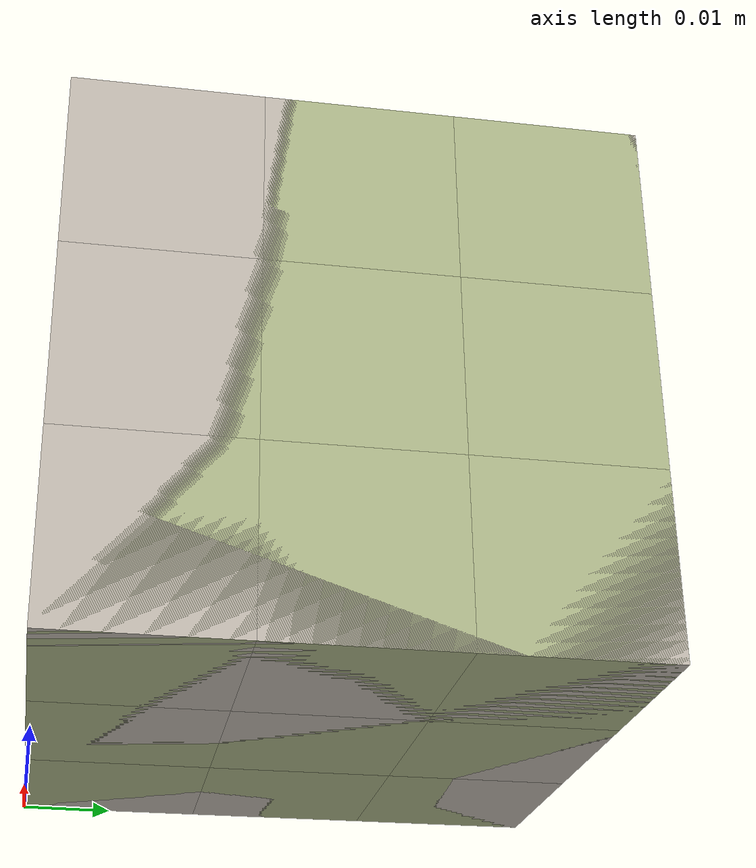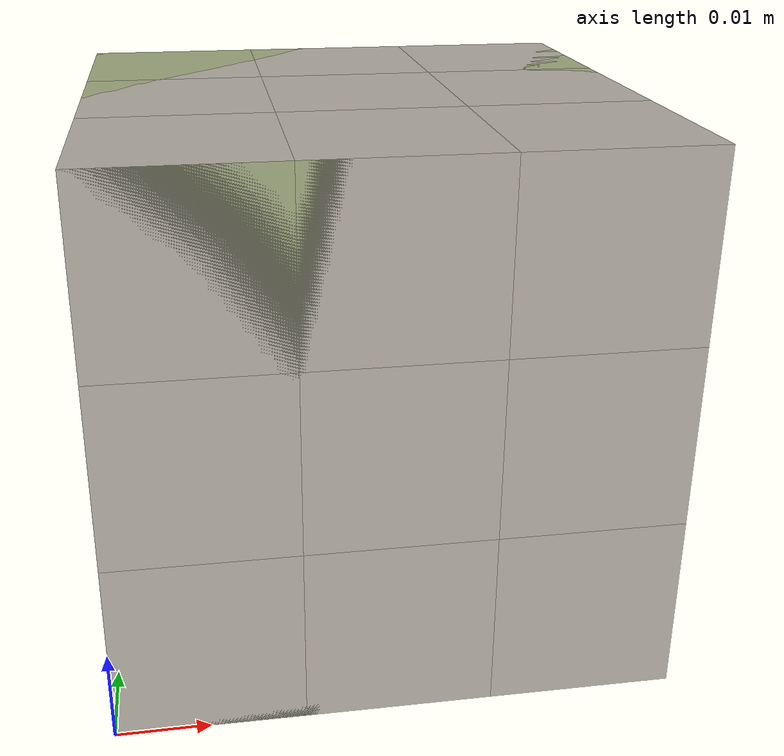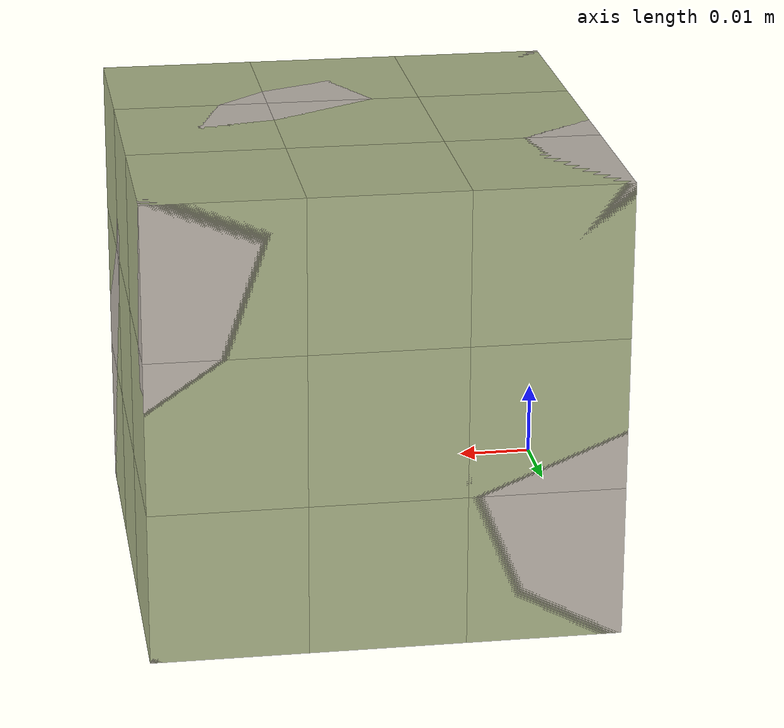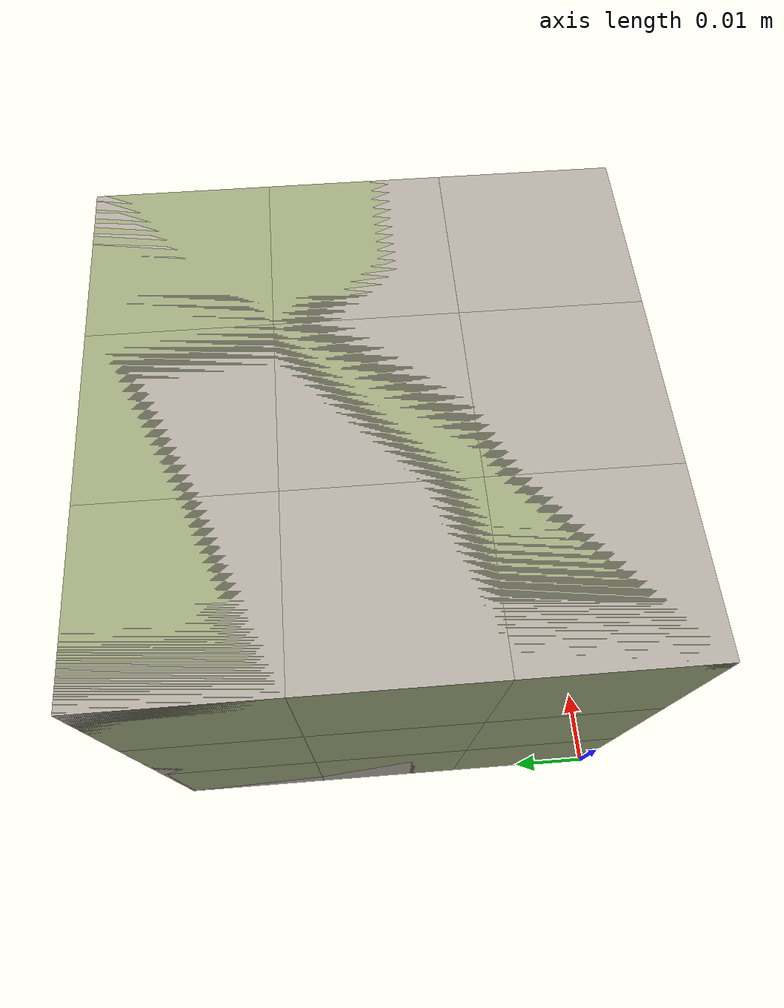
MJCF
<mujoco>
    <asset>
        <texture name='texture000' file="cube/material000.png" gridsize="3 4" gridlayout=".U..LFRB.D.."/>
        <material name="material000" texture="texture000" specular="1" shininess=".3"/>
        <texture name='texture001' file="cube/material001.png" gridsize="3 4" gridlayout=".U..LFRB.D.."/>
        <material name="material001" texture="texture001" specular="1" shininess=".3"/>
        <texture name='texture002' file="cube/material002.png" gridsize="3 4" gridlayout=".U..LFRB.D.."/>
        <material name="material002" texture="texture002" specular="1" shininess=".3"/>
        <texture name='texture010' file="cube/material010.png" gridsize="3 4" gridlayout=".U..LFRB.D.."/>
        <material name="material010" texture="texture010" specular="1" shininess=".3"/>
        <texture name='texture011' file="cube/material011.png" gridsize="3 4" gridlayout=".U..LFRB.D.."/>
        <material name="material011" texture="texture011" specular="1" shininess=".3"/>
        <texture name='texture012' file="cube/material012.png" gridsize="3 4" gridlayout=".U..LFRB.D.."/>
        <material name="material012" texture="texture012" specular="1" shininess=".3"/>
        <texture name='texture020' file="cube/material020.png" gridsize="3 4" gridlayout=".U..LFRB.D.."/>
        <material name="material020" texture="texture020" specular="1" shininess=".3"/>
        <texture name='texture021' file="cube/material021.png" gridsize="3 4" gridlayout=".U..LFRB.D.."/>
        <material name="material021" texture="texture021" specular="1" shininess=".3"/>
        <texture name='texture022' file="cube/material022.png" gridsize="3 4" gridlayout=".U..LFRB.D.."/>
        <material name="material022" texture="texture022" specular="1" shininess=".3"/>
        <texture name='texture100' file="cube/material100.png" gridsize="3 4" gridlayout=".U..LFRB.D.."/>
        <material name="material100" texture="texture100" specular="1" shininess=".3"/>
        <texture name='texture101' file="cube/material101.png" gridsize="3 4" gridlayout=".U..LFRB.D.."/>
        <material name="material101" texture="texture101" specular="1" shininess=".3"/>
        <texture name='texture102' file="cube/material102.png" gridsize="3 4" gridlayout=".U..LFRB.D.."/>
        <material name="material102" texture="texture102" specular="1" shininess=".3"/>
        <texture name='texture110' file="cube/material110.png" gridsize="3 4" gridlayout=".U..LFRB.D.."/>
        <material name="material110" texture="texture110" specular="1" shininess=".3"/>
        <texture name='texture111' file="cube/material111.png" gridsize="3 4" gridlayout=".U..LFRB.D.."/>
        <material name="material111" texture="texture111" specular="1" shininess=".3"/>
        <texture name='texture112' file="cube/material112.png" gridsize="3 4" gridlayout=".U..LFRB.D.."/>
        <material name="material112" texture="texture112" specular="1" shininess=".3"/>
        <texture name='texture120' file="cube/material120.png" gridsize="3 4" gridlayout=".U..LFRB.D.."/>
        <material name="material120" texture="texture120" specular="1" shininess=".3"/>
        <texture name='texture121' file="cube/material121.png" gridsize="3 4" gridlayout=".U..LFRB.D.."/>
        <material name="material121" texture="texture121" specular="1" shininess=".3"/>
        <texture name='texture122' file="cube/material122.png" gridsize="3 4" gridlayout=".U..LFRB.D.."/>
        <material name="material122" texture="texture122" specular="1" shininess=".3"/>
        <texture name='texture200' file="cube/material200.png" gridsize="3 4" gridlayout=".U..LFRB.D.."/>
        <material name="material200" texture="texture200" specular="1" shininess=".3"/>
        <texture name='texture201' file="cube/material201.png" gridsize="3 4" gridlayout=".U..LFRB.D.."/>
        <material name="material201" texture="texture201" specular="1" shininess=".3"/>
        <texture name='texture202' file="cube/material202.png" gridsize="3 4" gridlayout=".U..LFRB.D.."/>
        <material name="material202" texture="texture202" specular="1" shininess=".3"/>
        <texture name='texture210' file="cube/material210.png" gridsize="3 4" gridlayout=".U..LFRB.D.."/>
        <material name="material210" texture="texture210" specular="1" shininess=".3"/>
        <texture name='texture211' file="cube/material211.png" gridsize="3 4" gridlayout=".U..LFRB.D.."/>
        <material name="material211" texture="texture211" specular="1" shininess=".3"/>
        <texture name='texture212' file="cube/material212.png" gridsize="3 4" gridlayout=".U..LFRB.D.."/>
        <material name="material212" texture="texture212" specular="1" shininess=".3"/>
        <texture name='texture220' file="cube/material220.png" gridsize="3 4" gridlayout=".U..LFRB.D.."/>
        <material name="material220" texture="texture220" specular="1" shininess=".3"/>
        <texture name='texture221' file="cube/material221.png" gridsize="3 4" gridlayout=".U..LFRB.D.."/>
        <material name="material221" texture="texture221" specular="1" shininess=".3"/>
        <texture name='texture222' file="cube/material222.png" gridsize="3 4" gridlayout=".U..LFRB.D.."/>
        <material name="material222" texture="texture222" specular="1" shininess=".3"/>
    </asset>

    <worldbody>
        <body name="middle" pos="0.03 0.03 0.03">

            <geom name="core" pos="0.0 0.0 0.0" type="box" mass="1e-4" size="0.01 0.01 0.01" contype="0" conaffinity="0" rgba="0 1 0 0"/>

            <body name="body_axis0_val1">
                <geom  name="side_axis0_val1" pos="0.00 0.00 0.00" type="box" size="0.01 0.03 0.03" condim="4" contype="2" rgba="0 0 0 0"/>
                <geom  name="side_axis0_val1:100" pos="0.00 -0.02 -0.02" type="box" size="0.01 0.01 0.01" mass="1e-4" conaffinity="0" contype="0" material="material100"/>
                <geom  name="side_axis0_val1:101" pos="0.00 -0.02 0.00" type="box" size="0.01 0.01 0.01"  mass="1e-4" conaffinity="0" contype="0" material="material101"/>
                <geom  name="side_axis0_val1:102" pos="0.00 -0.02 0.02" type="box" size="0.01 0.01 0.01"  mass="1e-4" conaffinity="0" contype="0" material="material102"/>
                <geom  name="side_axis0_val1:110" pos="0.00 0.00 -0.02" type="box" size="0.01 0.01 0.01"  mass="1e-4" conaffinity="0" contype="0" material="material110"/>
                <geom  name="side_axis0_val1:111" pos="0.00 0.00 0.00" type="box" size="0.01 0.01 0.01"  mass="1e-4" conaffinity="0" contype="0" material="material111"/>
                <geom  name="side_axis0_val1:112" pos="0.00 0.00 0.02" type="box" size="0.01 0.01 0.01"  mass="1e-4" conaffinity="0" contype="0" material="material112"/>
                <geom  name="side_axis0_val1:120" pos="0.00 0.02 -0.02" type="box" size="0.01 0.01 0.01"  mass="1e-4" conaffinity="0" contype="0" material="material120"/>
                <geom  name="side_axis0_val1:121" pos="0.00 0.02 0.00" type="box" size="0.01 0.01 0.01"  mass="1e-4" conaffinity="0" contype="0" material="material121"/>
                <geom  name="side_axis0_val1:122" pos="0.00 0.02 0.02" type="box" size="0.01 0.01 0.01"  mass="1e-4" conaffinity="0" contype="0" material="material122"/>
            </body>
            <body name="body_axis1_val1">
                <geom  name="side_axis1_val1" pos="0.00 0.00 0.00" type="box" size="0.03 0.01 0.03" condim="4" contype="2" rgba="0 0 0 0"/>
                <geom  name="side_axis1_val1:010" pos="-0.02 0.00 -0.02" type="box" size="0.01 0.01 0.01"  mass="1e-4" conaffinity="0" contype="0" material="material010"/>
                <geom  name="side_axis1_val1:011" pos="-0.02 0.00 0.00" type="box" size="0.01 0.01 0.01"  mass="1e-4" conaffinity="0" contype="0" material="material011"/>
                <geom  name="side_axis1_val1:012" pos="-0.02 0.00 0.02" type="box" size="0.01 0.01 0.01"  mass="1e-4" conaffinity="0" contype="0" material="material012"/>
                <geom  name="side_axis1_val1:110" pos="0.00 0.00 -0.02" type="box" size="0.01 0.01 0.01"  mass="1e-4" conaffinity="0" contype="0" material="material110"/>
                <geom  name="side_axis1_val1:111" pos="0.00 0.00 0.00" type="box" size="0.01 0.01 0.01"  mass="1e-4" conaffinity="0" contype="0" material="material111"/>
                <geom  name="side_axis1_val1:112" pos="0.00 0.00 0.02" type="box" size="0.01 0.01 0.01"  mass="1e-4" conaffinity="0" contype="0" material="material112"/>
                <geom  name="side_axis1_val1:210" pos="0.02 0.00 -0.02" type="box" size="0.01 0.01 0.01"  mass="1e-4" conaffinity="0" contype="0" material="material210"/>
                <geom  name="side_axis1_val1:211" pos="0.02 0.00 0.00" type="box" size="0.01 0.01 0.01"  mass="1e-4" conaffinity="0" contype="0" material="material211"/>
                <geom  name="side_axis1_val1:212" pos="0.02 0.00 0.02" type="box" size="0.01 0.01 0.01"  mass="1e-4" conaffinity="0" contype="0" material="material212"/>
            </body>
            <body name="body_axis2_val1">
                <geom  name="side_axis2_val1" pos="0.00 0.00 0.00" type="box" size="0.03 0.03 0.01" condim="4" contype="2" rgba="0 0 0 0"/>
                <geom  name="side_axis2_val1:001" pos="-0.02 -0.02 0.00" type="box" size="0.01 0.01 0.01"  mass="1e-4" conaffinity="0" contype="0" material="material001"/>
                <geom  name="side_axis2_val1:011" pos="-0.02 0.00 0.00" type="box" size="0.01 0.01 0.01"  mass="1e-4" conaffinity="0" contype="0" material="material011"/>
                <geom  name="side_axis2_val1:021" pos="-0.02 0.02 0.00" type="box" size="0.01 0.01 0.01"  mass="1e-4" conaffinity="0" contype="0" material="material021"/>
                <geom  name="side_axis2_val1:101" pos="0.00 -0.02 0.00" type="box" size="0.01 0.01 0.01"  mass="1e-4" conaffinity="0" contype="0" material="material101"/>
                <geom  name="side_axis2_val1:111" pos="0.00 0.00 0.00" type="box" size="0.01 0.01 0.01"  mass="1e-4" conaffinity="0" contype="0" material="material111"/>
                <geom  name="side_axis2_val1:121" pos="0.00 0.02 0.00" type="box" size="0.01 0.01 0.01"  mass="1e-4" conaffinity="0" contype="0" material="material121"/>
                <geom  name="side_axis2_val1:201" pos="0.02 -0.02 0.00" type="box" size="0.01 0.01 0.01"  mass="1e-4" conaffinity="0" contype="0" material="material201"/>
                <geom  name="side_axis2_val1:211" pos="0.02 0.00 0.00" type="box" size="0.01 0.01 0.01"  mass="1e-4" conaffinity="0" contype="0" material="material211"/>
                <geom  name="side_axis2_val1:221" pos="0.02 0.02 0.00" type="box" size="0.01 0.01 0.01"  mass="1e-4" conaffinity="0" contype="0" material="material221"/>
            </body>
            <joint name="cube_tx" type="slide" axis="1 0 0" limited="false" />
            <joint name="cube_ty" type="slide" axis="0 1 0" limited="false" />
            <joint name="cube_tz" type="slide" axis="0 0 1" limited="false" />
            <joint name="cube_rot" type="ball" limited="false"/>

            <!-- x plates -->
            <body name="body_axis0_val0">
                <site name="center" pos="0 0 0" rgba="1 0 0 1" size="0.01 0.01 0.01"></site>
                <geom  name="side_axis0_val0" pos="-0.02 0.00 0.00" type="box" size="0.01 0.03 0.03" condim="4" contype="2" rgba="0 0 0 0"/>
                <geom  name="side_axis0_val0:000" pos="-0.02 -0.02 -0.02" type="box" size="0.01 0.01 0.01"  mass="1e-4" conaffinity="0" contype="0" material="material000"/>
                <geom  name="side_axis0_val0:001" pos="-0.02 -0.02 0.00" type="box" size="0.01 0.01 0.01"  mass="1e-4" conaffinity="0" contype="0" material="material001"/>
                <geom  name="side_axis0_val0:002" pos="-0.02 -0.02 0.02" type="box" size="0.01 0.01 0.01"  mass="1e-4" conaffinity="0" contype="0" material="material002"/>
                <geom  name="side_axis0_val0:010" pos="-0.02 0.00 -0.02" type="box" size="0.01 0.01 0.01"  mass="1e-4" conaffinity="0" contype="0" material="material010"/>
                <geom  name="side_axis0_val0:011" pos="-0.02 0.00 0.00" type="box" size="0.01 0.01 0.01"  mass="1e-4" conaffinity="0" contype="0" material="material011"/>
                <geom  name="side_axis0_val0:012" pos="-0.02 0.00 0.02" type="box" size="0.01 0.01 0.01"  mass="1e-4" conaffinity="0" contype="0" material="material012"/>
                <geom  name="side_axis0_val0:020" pos="-0.02 0.02 -0.02" type="box" size="0.01 0.01 0.01"  mass="1e-4" conaffinity="0" contype="0" material="material020"/>
                <geom  name="side_axis0_val0:021" pos="-0.02 0.02 0.00" type="box" size="0.01 0.01 0.01"  mass="1e-4" conaffinity="0" contype="0" material="material021"/>
                <geom  name="side_axis0_val0:022" pos="-0.02 0.02 0.02" type="box" size="0.01 0.01 0.01"  mass="1e-4" conaffinity="0" contype="0" material="material022"/>
                <joint name="joint_axis0_val0" type="hinge" axis="1 0 0" limited="false"/>
            </body>

            <body name="body_axis0_val2">
                <geom  name="side_axis0_val2" pos="0.02 0.00 0.00" type="box" size="0.01 0.03 0.03" condim="4" contype="2" rgba="0 0 0 0"/>
                <geom  name="side_axis0_val2:200" pos="0.02 -0.02 -0.02" type="box" size="0.01 0.01 0.01"  mass="1e-4" conaffinity="0" contype="0" material="material200"/>
                <geom  name="side_axis0_val2:201" pos="0.02 -0.02 0.00" type="box" size="0.01 0.01 0.01"  mass="1e-4" conaffinity="0" contype="0" material="material201"/>
                <geom  name="side_axis0_val2:202" pos="0.02 -0.02 0.02" type="box" size="0.01 0.01 0.01"  mass="1e-4" conaffinity="0" contype="0" material="material202"/>
                <geom  name="side_axis0_val2:210" pos="0.02 0.00 -0.02" type="box" size="0.01 0.01 0.01"  mass="1e-4" conaffinity="0" contype="0" material="material210"/>
                <geom  name="side_axis0_val2:211" pos="0.02 0.00 0.00" type="box" size="0.01 0.01 0.01"  mass="1e-4" conaffinity="0" contype="0" material="material211"/>
                <geom  name="side_axis0_val2:212" pos="0.02 0.00 0.02" type="box" size="0.01 0.01 0.01"  mass="1e-4" conaffinity="0" contype="0" material="material212"/>
                <geom  name="side_axis0_val2:220" pos="0.02 0.02 -0.02" type="box" size="0.01 0.01 0.01"  mass="1e-4" conaffinity="0" contype="0" material="material220"/>
                <geom  name="side_axis0_val2:221" pos="0.02 0.02 0.00" type="box" size="0.01 0.01 0.01"  mass="1e-4" conaffinity="0" contype="0" material="material221"/>
                <geom  name="side_axis0_val2:222" pos="0.02 0.02 0.02" type="box" size="0.01 0.01 0.01"  mass="1e-4" conaffinity="0" contype="0" material="material222"/>
                <joint name="joint_axis0_val2" type="hinge" axis="1 0 0" limited="false" />
            </body>

            <!-- y plates -->
            <body name="body_axis1_val0">
                <geom  name="side_axis1_val0" pos="0.00 -0.02 0.00" type="box" size="0.03 0.01 0.03" condim="4" contype="2" rgba="0 0 0 0"/>
                <geom  name="side_axis1_val0:000" pos="-0.02 -0.02 -0.02" type="box" size="0.01 0.01 0.01"  mass="1e-4" conaffinity="0" contype="0" material="material000"/>
                <geom  name="side_axis1_val0:001" pos="-0.02 -0.02 0.00" type="box" size="0.01 0.01 0.01"  mass="1e-4" conaffinity="0" contype="0" material="material001"/>
                <geom  name="side_axis1_val0:002" pos="-0.02 -0.02 0.02" type="box" size="0.01 0.01 0.01"  mass="1e-4" conaffinity="0" contype="0" material="material002"/>
                <geom  name="side_axis1_val0:100" pos="0.00 -0.02 -0.02" type="box" size="0.01 0.01 0.01"  mass="1e-4" conaffinity="0" contype="0" material="material100"/>
                <geom  name="side_axis1_val0:101" pos="0.00 -0.02 0.00" type="box" size="0.01 0.01 0.01"  mass="1e-4" conaffinity="0" contype="0" material="material101"/>
                <geom  name="side_axis1_val0:102" pos="0.00 -0.02 0.02" type="box" size="0.01 0.01 0.01"  mass="1e-4" conaffinity="0" contype="0" material="material102"/>
                <geom  name="side_axis1_val0:200" pos="0.02 -0.02 -0.02" type="box" size="0.01 0.01 0.01"  mass="1e-4" conaffinity="0" contype="0" material="material200"/>
                <geom  name="side_axis1_val0:201" pos="0.02 -0.02 0.00" type="box" size="0.01 0.01 0.01"  mass="1e-4" conaffinity="0" contype="0" material="material201"/>
                <geom  name="side_axis1_val0:202" pos="0.02 -0.02 0.02" type="box" size="0.01 0.01 0.01"  mass="1e-4" conaffinity="0" contype="0" material="material202"/>
                <joint name="joint_axis1_val0" type="hinge" axis="0 1 0" limited="false"/>
            </body>

            <body name="body_axis1_val2">
                <geom  name="side_axis1_val2" pos="0.00 0.02 0.00" type="box" size="0.03 0.01 0.03" condim="4" contype="2" rgba="0 0 0 0"/>
                <geom  name="side_axis1_val2:020" pos="-0.02 0.02 -0.02" type="box" size="0.01 0.01 0.01"  mass="1e-4" conaffinity="0" contype="0" material="material020"/>
                <geom  name="side_axis1_val2:021" pos="-0.02 0.02 0.00" type="box" size="0.01 0.01 0.01"  mass="1e-4" conaffinity="0" contype="0" material="material021"/>
                <geom  name="side_axis1_val2:022" pos="-0.02 0.02 0.02" type="box" size="0.01 0.01 0.01"  mass="1e-4" conaffinity="0" contype="0" material="material022"/>
                <geom  name="side_axis1_val2:120" pos="0.00 0.02 -0.02" type="box" size="0.01 0.01 0.01"  mass="1e-4" conaffinity="0" contype="0" material="material120"/>
                <geom  name="side_axis1_val2:121" pos="0.00 0.02 0.00" type="box" size="0.01 0.01 0.01"  mass="1e-4" conaffinity="0" contype="0" material="material121"/>
                <geom  name="side_axis1_val2:122" pos="0.00 0.02 0.02" type="box" size="0.01 0.01 0.01"  mass="1e-4" conaffinity="0" contype="0" material="material122"/>
                <geom  name="side_axis1_val2:220" pos="0.02 0.02 -0.02" type="box" size="0.01 0.01 0.01"  mass="1e-4" conaffinity="0" contype="0" material="material220"/>
                <geom  name="side_axis1_val2:221" pos="0.02 0.02 0.00" type="box" size="0.01 0.01 0.01"  mass="1e-4" conaffinity="0" contype="0" material="material221"/>
                <geom  name="side_axis1_val2:222" pos="0.02 0.02 0.02" type="box" size="0.01 0.01 0.01"  mass="1e-4" conaffinity="0" contype="0" material="material222"/>
                <joint name="joint_axis1_val2" type="hinge" axis="0 1 0" limited="false" />
            </body>

            <!-- z plates -->
            <body name="body_axis2_val0">
                <geom  name="side_axis2_val0" pos="0.00 0.0 -0.02" type="box" size="0.03 0.03 0.01" condim="4" contype="2" rgba="0 0 0 0"/>
                <geom  name="side_axis2_val0:000" pos="-0.02 -0.02 -0.02" type="box" size="0.01 0.01 0.01"  mass="1e-4" conaffinity="0" contype="0" material="material000"/>
                <geom  name="side_axis2_val0:010" pos="-0.02 0.00 -0.02" type="box" size="0.01 0.01 0.01"  mass="1e-4" conaffinity="0" contype="0" material="material010"/>
                <geom  name="side_axis2_val0:020" pos="-0.02 0.02 -0.02" type="box" size="0.01 0.01 0.01"  mass="1e-4" conaffinity="0" contype="0" material="material020"/>
                <geom  name="side_axis2_val0:100" pos="0.00 -0.02 -0.02" type="box" size="0.01 0.01 0.01"  mass="1e-4" conaffinity="0" contype="0" material="material100"/>
                <geom  name="side_axis2_val0:110" pos="0.00 0.00 -0.02" type="box" size="0.01 0.01 0.01"  mass="1e-4" conaffinity="0" contype="0" material="material110"/>
                <geom  name="side_axis2_val0:120" pos="0.00 0.02 -0.02" type="box" size="0.01 0.01 0.01"  mass="1e-4" conaffinity="0" contype="0" material="material120"/>
                <geom  name="side_axis2_val0:200" pos="0.02 -0.02 -0.02" type="box" size="0.01 0.01 0.01"  mass="1e-4" conaffinity="0" contype="0" material="material200"/>
                <geom  name="side_axis2_val0:210" pos="0.02 0.00 -0.02" type="box" size="0.01 0.01 0.01"  mass="1e-4" conaffinity="0" contype="0" material="material210"/>
                <geom  name="side_axis2_val0:220" pos="0.02 0.02 -0.02" type="box" size="0.01 0.01 0.01"  mass="1e-4" conaffinity="0" contype="0" material="material220"/>
                <joint name="joint_axis2_val0" type="hinge" axis="0 0 1" limited="false" />
            </body>

            <body name="body_axis2_val2">
                <geom  name="side_axis2_val2" pos="0.00 0.0 0.02" type="box" size="0.03 0.03 0.01" condim="4" contype="2" rgba="0 0 0 0"/>
                <geom  name="side_axis2_val2:002" pos="-0.02 -0.02 0.02" type="box" size="0.01 0.01 0.01"  mass="1e-4" conaffinity="0" contype="0" material="material002"/>
                <geom  name="side_axis2_val2:012" pos="-0.02 0.00 0.02" type="box" size="0.01 0.01 0.01"  mass="1e-4" conaffinity="0" contype="0" material="material012"/>
                <geom  name="side_axis2_val2:022" pos="-0.02 0.02 0.02" type="box" size="0.01 0.01 0.01"  mass="1e-4" conaffinity="0" contype="0" material="material022"/>
                <geom  name="side_axis2_val2:102" pos="0.00 -0.02 0.02" type="box" size="0.01 0.01 0.01"  mass="1e-4" conaffinity="0" contype="0" material="material102"/>
                <geom  name="side_axis2_val2:112" pos="0.00 0.00 0.02" type="box" size="0.01 0.01 0.01"  mass="1e-4" conaffinity="0" contype="0" material="material112"/>
                <geom  name="side_axis2_val2:122" pos="0.00 0.02 0.02" type="box" size="0.01 0.01 0.01"  mass="1e-4" conaffinity="0" contype="0" material="material122"/>
                <geom  name="side_axis2_val2:202" pos="0.02 -0.02 0.02" type="box" size="0.01 0.01 0.01"  mass="1e-4" conaffinity="0" contype="0" material="material202"/>
                <geom  name="side_axis2_val2:212" pos="0.02 0.00 0.02" type="box" size="0.01 0.01 0.01"  mass="1e-4" conaffinity="0" contype="0" material="material212"/>
                <geom  name="side_axis2_val2:222" pos="0.02 0.02 0.02" type="box" size="0.01 0.01 0.01"  mass="1e-4" conaffinity="0" contype="0" material="material222"/>
                <joint name="joint_axis2_val2" type="hinge" axis="0 0 1" limited="false" />
            </body>
        </body>
        <body name="annotation:outer_bound" pos="0.03 0.03 0.03">
            <geom conaffinity="0" contype="0" mass="0" pos="0 0 0" rgba="0.417022 0.720324 0.000114 0.1" size="0.03 0.03 0.03" type="box"></geom>
        </body>
        <body name="annotation:top_0" pos="0.03 0.03 0.07">
            <geom conaffinity="0" contype="0" mass="0" pos="0 0 0" rgba="0.417022 0.720324 0.000114 0.0" size="0.03 0.03 0.01" type="box"></geom>
        </body>
    </worldbody>
</mujoco>
